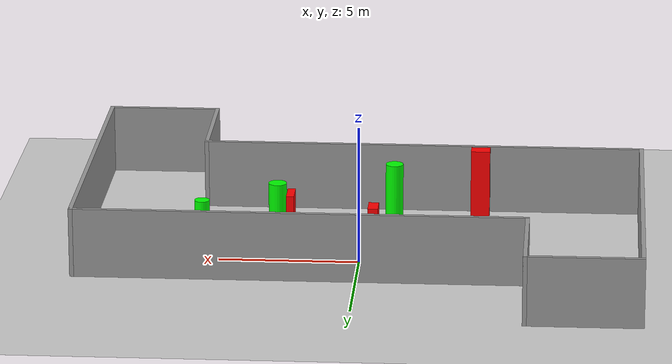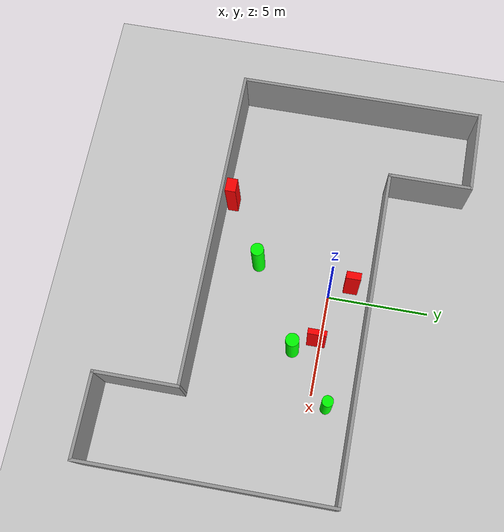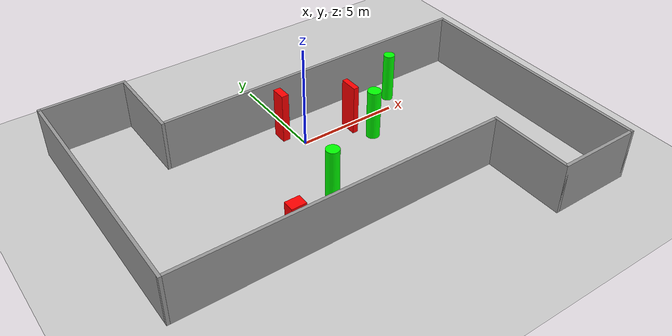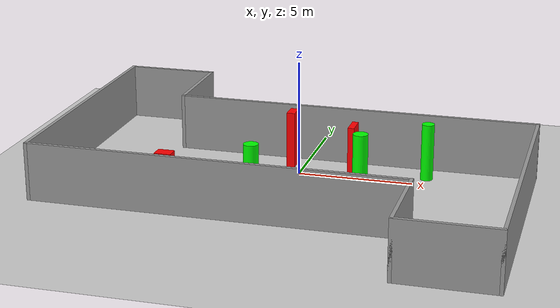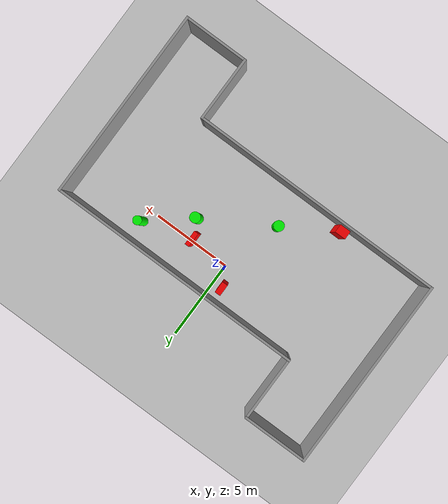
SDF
<sdf version="1.7">
 <world name="default">
  <light name="sun" type="directional">
   <pose>0 0 10 0 -0 0</pose>
   <diffuse>0.8 0.8 0.8 1</diffuse>
   <specular>0.2 0.2 0.2 1</specular>
   <attenuation>
    <range>1000</range>
    <constant>0.9</constant>
    <linear>0.01</linear>
    <quadratic>0.001</quadratic>
   </attenuation>
   <direction>-0.5 0.1 -0.9</direction>
   <spot><inner_angle>0</inner_angle><outer_angle>0</outer_angle><falloff>0</falloff></spot>
  </light>
  <model name="ground_plane">
   <static>1</static>
   <link name="link">
    <collision name="collision">
     <geometry><plane><normal>0 0 1</normal><size>100 100</size></plane></geometry>
     <surface>
      <contact><collide_bitmask>65535</collide_bitmask></contact>
      <friction><ode><mu>100</mu><mu2>50</mu2></ode></friction>
     </surface>
    </collision>
    <visual name="visual">
     <cast_shadows>0</cast_shadows>
     <geometry><plane><normal>0 0 1</normal><size>100 100</size></plane></geometry>
     <material>
      <script><uri>file://media/materials/scripts/gazebo.material</uri><name>Gazebo/Grey</name></script>
     </material>
    </visual>
   </link>
  </model>
  <gravity>0 0 -9.8</gravity>
  <magnetic_field>6e-06 2.3e-05 -4.2e-05</magnetic_field>
  <atmosphere type="adiabatic"/>
  <physics type="ode">
   <max_step_size>0.001</max_step_size>
   <real_time_factor>1</real_time_factor>
   <real_time_update_rate>1000</real_time_update_rate>
  </physics>
  <scene><ambient>0.4 0.4 0.4 1</ambient><background>0.7 0.7 0.7 1</background><shadows>1</shadows></scene>
  <spherical_coordinates>
   <surface_model>EARTH_WGS84</surface_model>
   <latitude_deg>0</latitude_deg>
   <longitude_deg>0</longitude_deg>
   <elevation>0</elevation>
   <heading_deg>0</heading_deg>
  </spherical_coordinates>
  <model name="my_base_walls">
   <link name="Wall_13">
    <collision name="Wall_13_Collision">
     <geometry><box><size>12.15 0.15 2.5</size></box></geometry>
     <pose>0 0 1.25 0 -0 0</pose>
    </collision>
    <visual name="Wall_13_Visual">
     <pose>0 0 1.25 0 -0 0</pose>
     <geometry><box><size>12.15 0.15 2.5</size></box></geometry>
     <material>
      <script><uri>file://media/materials/scripts/gazebo.material</uri><name>Gazebo/Grey</name></script>
      <ambient>1 1 1 1</ambient>
     </material>
     <meta><layer>0</layer></meta>
    </visual>
    <pose>10 -2 0 0 -0 1.5708</pose>
   </link>
   <link name="Wall_15">
    <collision name="Wall_15_Collision">
     <geometry><box><size>16.15 0.15 2.5</size></box></geometry>
     <pose>0 0 1.25 0 -0 0</pose>
    </collision>
    <visual name="Wall_15_Visual">
     <pose>0 0 1.25 0 -0 0</pose>
     <geometry><box><size>16.15 0.15 2.5</size></box></geometry>
     <material>
      <script><uri>file://media/materials/scripts/gazebo.material</uri><name>Gazebo/Grey</name></script>
      <ambient>1 1 1 1</ambient>
     </material>
     <meta><layer>0</layer></meta>
    </visual>
    <pose>2 4 0 0 -0 3.14159</pose>
   </link>
   <link name="Wall_17">
    <collision name="Wall_17_Collision">
     <geometry><box><size>4.15 0.15 2.5</size></box></geometry>
     <pose>0 0 1.25 0 -0 0</pose>
    </collision>
    <visual name="Wall_17_Visual">
     <pose>0 0 1.25 0 -0 0</pose>
     <geometry><box><size>4.15 0.15 2.5</size></box></geometry>
     <material>
      <script><uri>file://media/materials/scripts/gazebo.material</uri><name>Gazebo/Grey</name></script>
      <ambient>1 1 1 1</ambient>
     </material>
     <meta><layer>0</layer></meta>
    </visual>
    <pose>6 -6 0 0 -0 -1.5708</pose>
   </link>
   <link name="Wall_19">
    <collision name="Wall_19_Collision">
     <geometry><box><size>12.15 0.15 2.5</size></box></geometry>
     <pose>0 0 1.25 0 -0 0</pose>
    </collision>
    <visual name="Wall_19_Visual">
     <pose>0 0 1.25 0 -0 0</pose>
     <geometry><box><size>12.15 0.15 2.5</size></box></geometry>
     <material>
      <script><uri>file://media/materials/scripts/gazebo.material</uri><name>Gazebo/Grey</name></script>
      <ambient>1 1 1 1</ambient>
     </material>
     <meta><layer>0</layer></meta>
    </visual>
    <pose>-10 2 0 0 -0 1.5708</pose>
   </link>
   <link name="Wall_21">
    <collision name="Wall_21_Collision">
     <geometry><box><size>4.15 0.15 2.5</size></box></geometry>
     <pose>0 0 1.25 0 -0 0</pose>
    </collision>
    <visual name="Wall_21_Visual">
     <pose>0 0 1.25 0 -0 0</pose>
     <geometry><box><size>4.15 0.15 2.5</size></box></geometry>
     <material>
      <script><uri>file://media/materials/scripts/gazebo.material</uri><name>Gazebo/Grey</name></script>
      <ambient>1 1 1 1</ambient>
     </material>
     <meta><layer>0</layer></meta>
    </visual>
    <pose>-8 8 0 0 -0 0</pose>
   </link>
   <link name="Wall_23">
    <collision name="Wall_23_Collision">
     <geometry><box><size>4.15 0.15 2.5</size></box></geometry>
     <pose>0 0 1.25 0 -0 0</pose>
    </collision>
    <visual name="Wall_23_Visual">
     <pose>0 0 1.25 0 -0 0</pose>
     <geometry><box><size>4.15 0.15 2.5</size></box></geometry>
     <material>
      <script><uri>file://media/materials/scripts/gazebo.material</uri><name>Gazebo/Grey</name></script>
      <ambient>1 1 1 1</ambient>
     </material>
     <meta><layer>0</layer></meta>
    </visual>
    <pose>-6 6 0 0 -0 -1.5708</pose>
   </link>
   <link name="Wall_25">
    <collision name="Wall_25_Collision">
     <geometry><box><size>4.15 0.15 2.5</size></box></geometry>
     <pose>0 0 1.25 0 -0 0</pose>
    </collision>
    <visual name="Wall_25_Visual">
     <pose>0 0 1.25 0 -0 0</pose>
     <geometry><box><size>4.15 0.15 2.5</size></box></geometry>
     <material>
      <script><uri>file://media/materials/scripts/gazebo.material</uri><name>Gazebo/Grey</name></script>
      <ambient>1 1 1 1</ambient>
     </material>
     <meta><layer>0</layer></meta>
    </visual>
    <pose>8 -8 0 0 -0 0</pose>
   </link>
   <link name="Wall_9">
    <collision name="Wall_9_Collision">
     <geometry><box><size>16.15 0.15 2.5</size></box></geometry>
     <pose>0 0 1.25 0 -0 0</pose>
    </collision>
    <visual name="Wall_9_Visual">
     <pose>0 0 1.25 0 -0 0</pose>
     <geometry><box><size>16.15 0.15 2.5</size></box></geometry>
     <material>
      <script><uri>file://media/materials/scripts/gazebo.material</uri><name>Gazebo/Grey</name></script>
      <ambient>1 1 1 1</ambient>
     </material>
     <meta><layer>0</layer></meta>
    </visual>
    <pose>-2 -4 0 0 -0 3.14159</pose>
   </link>
   <static>1</static>
   <pose>-0 -2 0 0 -0 0</pose>
  </model>
  <model name="cylinder1">
   <static>1</static>
   <link name="link">
    <inertial>
     <mass>1</mass>
     <inertia><ixx>0.5</ixx><ixy>0</ixy><ixz>0</ixz><iyy>0.5</iyy><iyz>0</iyz><izz>1</izz></inertia>
    </inertial>
    <collision name="collision">
     <geometry><cylinder><radius>0.3180836704275495</radius><length>2.5</length></cylinder></geometry>
    </collision>
    <visual name="visual">
     <geometry><cylinder><radius>0.3180836704275495</radius><length>2.5</length></cylinder></geometry>
     <material>
      <ambient>0 1 0 1</ambient>
      <diffuse>0 1 0 1</diffuse>
      <specular>0.1 0.1 0.1 1</specular>
      <emissive>0 0 0 0</emissive>
     </material>
    </visual>
   </link>
   <pose>-1.065404587673192 -3.698152305827363 1.25 0 0 0</pose>
  </model>
  <model name="cylinder2">
   <static>1</static>
   <link name="link">
    <inertial>
     <mass>1</mass>
     <inertia><ixx>0.5</ixx><ixy>0</ixy><ixz>0</ixz><iyy>0.5</iyy><iyz>0</iyz><izz>1</izz></inertia>
    </inertial>
    <collision name="collision">
     <geometry><cylinder><radius>0.26863186839082354</radius><length>2.5</length></cylinder></geometry>
    </collision>
    <visual name="visual">
     <geometry><cylinder><radius>0.26863186839082354</radius><length>2.5</length></cylinder></geometry>
     <material>
      <ambient>0 1 0 1</ambient>
      <diffuse>0 1 0 1</diffuse>
      <specular>0.1 0.1 0.1 1</specular>
      <emissive>0 0 0 0</emissive>
     </material>
    </visual>
   </link>
   <pose>5.4870886847849025 0.7740008894824779 1.25 0 0 0</pose>
  </model>
  <model name="cylinder3">
   <static>1</static>
   <link name="link">
    <inertial>
     <mass>1</mass>
     <inertia><ixx>0.5</ixx><ixy>0</ixy><ixz>0</ixz><iyy>0.5</iyy><iyz>0</iyz><izz>1</izz></inertia>
    </inertial>
    <collision name="collision">
     <geometry><cylinder><radius>0.3249339244781968</radius><length>2.5</length></cylinder></geometry>
    </collision>
    <visual name="visual">
     <geometry><cylinder><radius>0.3249339244781968</radius><length>2.5</length></cylinder></geometry>
     <material>
      <ambient>0 1 0 1</ambient>
      <diffuse>0 1 0 1</diffuse>
      <specular>0.1 0.1 0.1 1</specular>
      <emissive>0 0 0 0</emissive>
     </material>
    </visual>
   </link>
   <pose>2.983036415228977 -1.2842722637509736 1.25 0 0 0</pose>
  </model>
  <model name="box1">
   <static>1</static>
   <link name="link">
    <inertial>
     <mass>1</mass>
     <inertia><ixx>0.083</ixx><ixy>0</ixy><ixz>0</ixz><iyy>0.083</iyy><iyz>0</iyz><izz>0.083</izz></inertia>
    </inertial>
    <collision name="collision">
     <geometry><box><size>0.2709279081443769 0.9062689555560379 2.5</size></box></geometry>
    </collision>
    <visual name="visual">
     <geometry><box><size>0.2709279081443769 0.9062689555560379 2.5</size></box></geometry>
     <material>
      <ambient>1 0 0 1</ambient>
      <diffuse>1 0 0 1</diffuse>
      <specular>0.1 0.1 0.1 1</specular>
      <emissive>0 0 0 0</emissive>
     </material>
    </visual>
    <sensor name="my_contact" type="contact">
     <contact><collision>box_collision</collision><topic>__default_topic__</topic></contact>
    </sensor>
   </link>
   <pose>2.4275936095197324 -0.2074438707330426 1.25 0 0 0</pose>
  </model>
  <model name="box2">
   <static>1</static>
   <link name="link">
    <inertial>
     <mass>1</mass>
     <inertia><ixx>0.083</ixx><ixy>0</ixy><ixz>0</ixz><iyy>0.083</iyy><iyz>0</iyz><izz>0.083</izz></inertia>
    </inertial>
    <collision name="collision">
     <geometry><box><size>0.6897649160433774 0.5299387285622009 2.5</size></box></geometry>
    </collision>
    <visual name="visual">
     <geometry><box><size>0.6897649160433774 0.5299387285622009 2.5</size></box></geometry>
     <material>
      <ambient>1 0 0 1</ambient>
      <diffuse>1 0 0 1</diffuse>
      <specular>0.1 0.1 0.1 1</specular>
      <emissive>0 0 0 0</emissive>
     </material>
    </visual>
    <sensor name="my_contact" type="contact">
     <contact><collision>box_collision</collision><topic>__default_topic__</topic></contact>
    </sensor>
   </link>
   <pose>-4.126698754617062 -5.5666536599895755 1.25 0 0 0</pose>
  </model>
  <model name="box3">
   <static>1</static>
   <link name="link">
    <inertial>
     <mass>1</mass>
     <inertia><ixx>0.083</ixx><ixy>0</ixy><ixz>0</ixz><iyy>0.083</iyy><iyz>0</iyz><izz>0.083</izz></inertia>
    </inertial>
    <collision name="collision">
     <geometry><box><size>0.35788047991017663 0.7156897939643707 2.5</size></box></geometry>
    </collision>
    <visual name="visual">
     <geometry><box><size>0.35788047991017663 0.7156897939643707 2.5</size></box></geometry>
     <material>
      <ambient>1 0 0 1</ambient>
      <diffuse>1 0 0 1</diffuse>
      <specular>0.1 0.1 0.1 1</specular>
      <emissive>0 0 0 0</emissive>
     </material>
    </visual>
    <sensor name="my_contact" type="contact">
     <contact><collision>box_collision</collision><topic>__default_topic__</topic></contact>
    </sensor>
   </link>
   <pose>-0.5712965853656495 1.04341241781409 1.25 0 0 0</pose>
  </model>
 </world>
</sdf>
